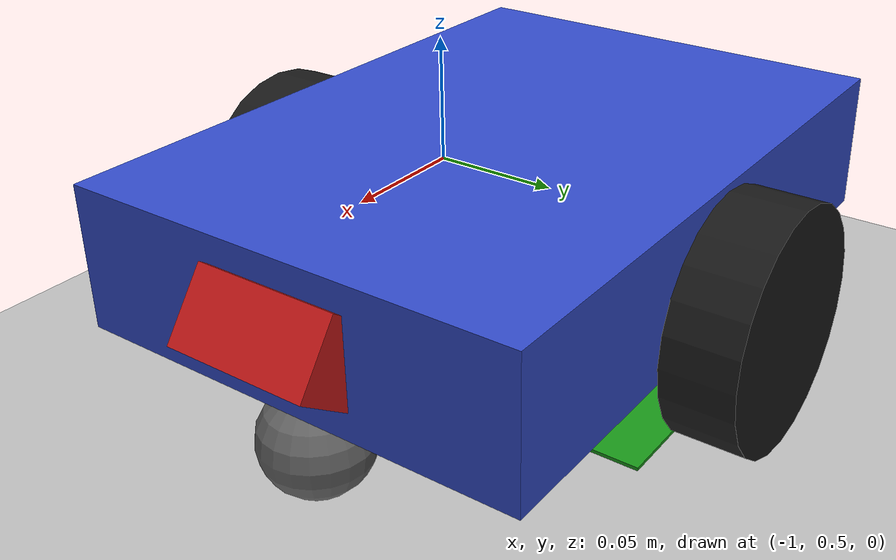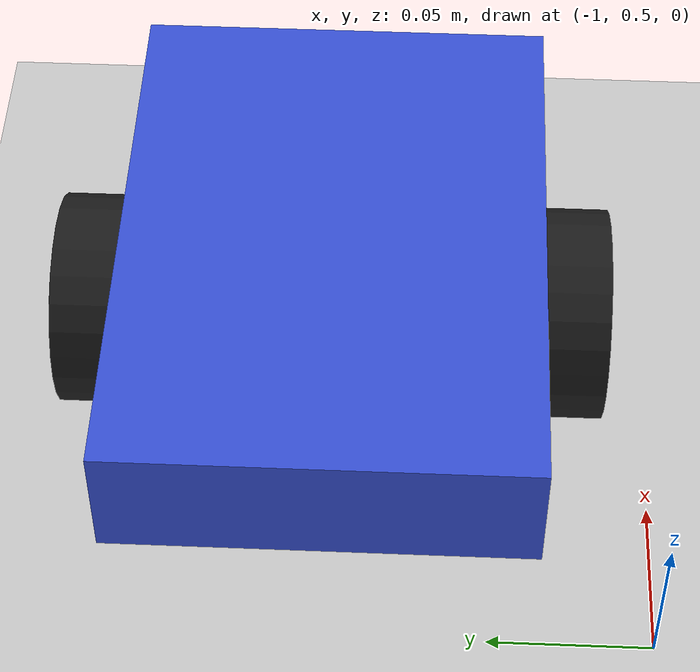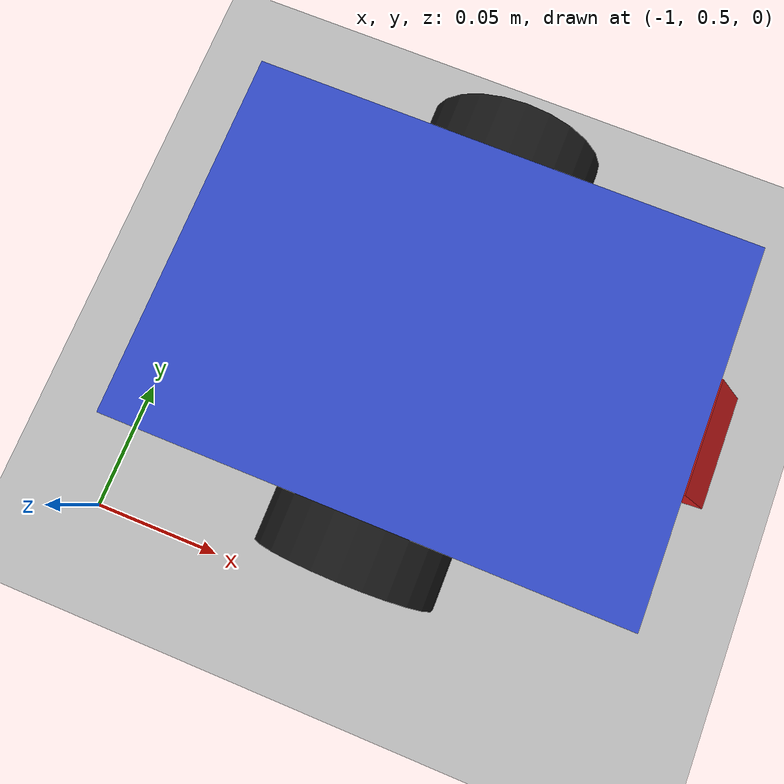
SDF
<sdf version="1.9">
 <world name="line_follower_world">
  <model name="ground_plane">
   <static>true</static>
   <link name="link">
    <collision name="collision">
     <geometry><plane><normal>0 0 1</normal><size>8 6</size></plane></geometry>
    </collision>
    <visual name="visual">
     <geometry><plane><normal>0 0 1</normal><size>8 6</size></plane></geometry>
     <material>
      <ambient>0.75 0.75 0.75 1</ambient>
      <diffuse>0.75 0.75 0.75 1</diffuse>
      <specular>0.1 0.1 0.1 1</specular>
     </material>
    </visual>
   </link>
  </model>
  <model name="start_marker">
   <static>true</static>
   <pose>-0.9 0.6 0.0015 0 0 0</pose>
   <link name="link">
    <visual name="visual">
     <geometry><box><size>0.06 0.12 0.001</size></box></geometry>
     <material><ambient>0.1 0.6 0.1 1</ambient><diffuse>0.1 0.6 0.1 1</diffuse></material>
    </visual>
   </link>
  </model>
  <model name="line_follower">
   <pose>-0.9 0.6 0.05 0 0 0</pose>
   <link name="base_link">
    <inertial>
     <mass>1.0</mass>
     <inertia><ixx>0.002</ixx><ixy>0.0</ixy><ixz>0.0</ixz><iyy>0.003</iyy><iyz>0.0</iyz><izz>0.004</izz></inertia>
    </inertial>
    <visual name="chassis_vis">
     <geometry><box><size>0.18 0.13 0.04</size></box></geometry>
     <material>
      <ambient>0.2 0.3 0.8 1</ambient>
      <diffuse>0.2 0.3 0.8 1</diffuse>
      <specular>0.1 0.1 0.1 1</specular>
     </material>
    </visual>
    <collision name="chassis_col"><geometry><box><size>0.18 0.13 0.04</size></box></geometry></collision>
   </link>
   <link name="left_wheel">
    <pose>0 0.075 -0.015 1.5708 0 0</pose>
    <inertial>
     <mass>0.05</mass>
     <inertia>
      <ixx>0.00002</ixx>
      <ixy>0.0</ixy>
      <ixz>0.0</ixz>
      <iyy>0.00002</iyy>
      <iyz>0.0</iyz>
      <izz>0.00003</izz>
     </inertia>
    </inertial>
    <visual name="lw_vis">
     <geometry><cylinder><radius>0.033</radius><length>0.02</length></cylinder></geometry>
     <material><ambient>0.1 0.1 0.1 1</ambient><diffuse>0.1 0.1 0.1 1</diffuse></material>
    </visual>
    <collision name="lw_col">
     <geometry><cylinder><radius>0.033</radius><length>0.02</length></cylinder></geometry>
     <surface><friction><ode><mu>1.0</mu><mu2>1.0</mu2></ode></friction></surface>
    </collision>
   </link>
   <joint name="left_wheel_joint" type="revolute">
    <parent>base_link</parent>
    <child>left_wheel</child>
    <axis><xyz expressed_in="__model__">0 1 0</xyz><limit><lower>-1e16</lower><upper>1e16</upper></limit></axis>
   </joint>
   <link name="right_wheel">
    <pose>0 -0.075 -0.015 1.5708 0 0</pose>
    <inertial>
     <mass>0.05</mass>
     <inertia>
      <ixx>0.00002</ixx>
      <ixy>0.0</ixy>
      <ixz>0.0</ixz>
      <iyy>0.00002</iyy>
      <iyz>0.0</iyz>
      <izz>0.00003</izz>
     </inertia>
    </inertial>
    <visual name="rw_vis">
     <geometry><cylinder><radius>0.033</radius><length>0.02</length></cylinder></geometry>
     <material><ambient>0.1 0.1 0.1 1</ambient><diffuse>0.1 0.1 0.1 1</diffuse></material>
    </visual>
    <collision name="rw_col">
     <geometry><cylinder><radius>0.033</radius><length>0.02</length></cylinder></geometry>
     <surface><friction><ode><mu>1.0</mu><mu2>1.0</mu2></ode></friction></surface>
    </collision>
   </link>
   <joint name="right_wheel_joint" type="revolute">
    <parent>base_link</parent>
    <child>right_wheel</child>
    <axis><xyz expressed_in="__model__">0 1 0</xyz><limit><lower>-1e16</lower><upper>1e16</upper></limit></axis>
   </joint>
   <link name="caster_wheel">
    <pose>0.08 0 -0.033 0 0 0</pose>
    <inertial>
     <mass>0.02</mass>
     <inertia>
      <ixx>0.000004</ixx>
      <ixy>0.0</ixy>
      <ixz>0.0</ixz>
      <iyy>0.000004</iyy>
      <iyz>0.0</iyz>
      <izz>0.000004</izz>
     </inertia>
    </inertial>
    <visual name="caster_vis">
     <geometry><sphere><radius>0.015</radius></sphere></geometry>
     <material><ambient>0.4 0.4 0.4 1</ambient><diffuse>0.4 0.4 0.4 1</diffuse></material>
    </visual>
    <collision name="caster_col">
     <geometry><sphere><radius>0.015</radius></sphere></geometry>
     <surface><friction><ode><mu>0.0</mu><mu2>0.0</mu2></ode></friction></surface>
    </collision>
   </link>
   <joint name="caster_joint" type="fixed"><parent>base_link</parent><child>caster_wheel</child></joint>
   <link name="camera_link">
    <pose>0.09 0 0.0 0 0.95 0</pose>
    <inertial>
     <mass>0.01</mass>
     <inertia>
      <ixx>0.000001</ixx>
      <ixy>0.0</ixy>
      <ixz>0.0</ixz>
      <iyy>0.000001</iyy>
      <iyz>0.0</iyz>
      <izz>0.000001</izz>
     </inertia>
    </inertial>
    <visual name="camera_vis">
     <geometry><box><size>0.02 0.04 0.02</size></box></geometry>
     <material><ambient>0.8 0.1 0.1 1</ambient><diffuse>0.8 0.1 0.1 1</diffuse></material>
    </visual>
    <sensor name="line_camera" type="camera">
     <topic>/camera</topic>
     <update_rate>30</update_rate>
     <camera>
      <horizontal_fov>1.05</horizontal_fov>
      <image><width>320</width><height>240</height><format>R8G8B8</format></image>
      <clip><near>0.02</near><far>3.0</far></clip>
     </camera>
     <always_on>true</always_on>
     <visualize>true</visualize>
    </sensor>
   </link>
   <joint name="camera_joint" type="fixed"><parent>base_link</parent><child>camera_link</child></joint>
   <plugin filename="gz-sim-diff-drive-system" name="gz::sim::systems::DiffDrive">
    <left_joint>left_wheel_joint</left_joint>
    <right_joint>right_wheel_joint</right_joint>
    <wheel_separation>0.15</wheel_separation>
    <wheel_radius>0.033</wheel_radius>
    <max_linear_acceleration>3</max_linear_acceleration>
    <topic>/model/line_follower/cmd_vel</topic>
    <odom_topic>/model/line_follower/odometry</odom_topic>
    <tf_topic>/model/line_follower/tf</tf_topic>
    <frame_id>odom</frame_id>
    <child_frame_id>base_link</child_frame_id>
    <odom_publish_frequency>30</odom_publish_frequency>
   </plugin>
   <plugin filename="gz-sim-joint-state-publisher-system" name="gz::sim::systems::JointStatePublisher"/>
  </model>
 </world>
</sdf>
